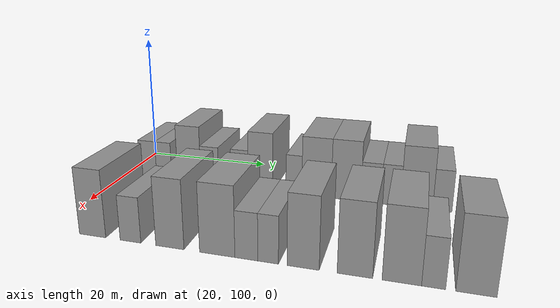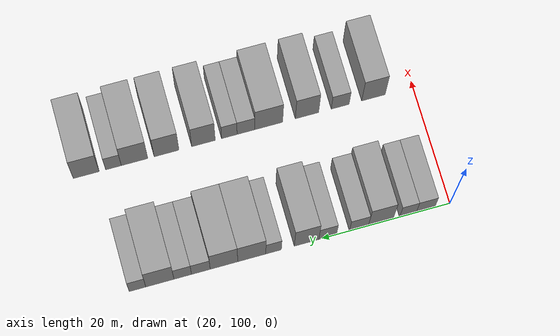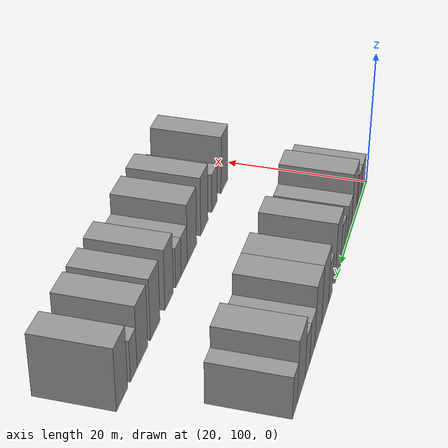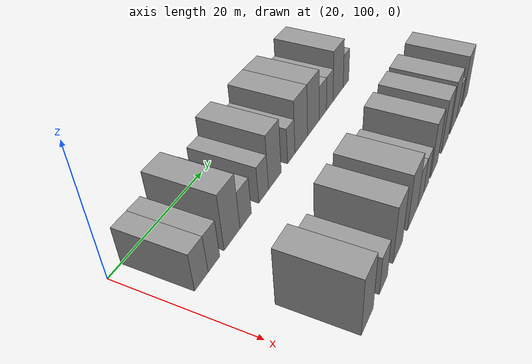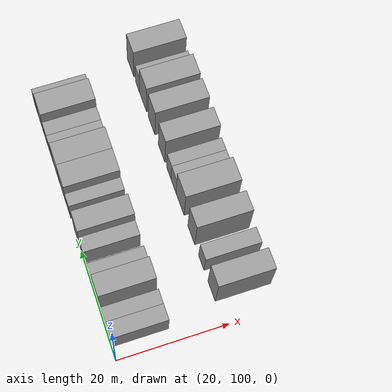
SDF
<sdf version="1.6">
 <world name="default">
  <model name="building_72">
   <static>1</static>
   <pose>25.0000 103.8931 0 0.000000 0.000000 0.000000</pose>
   <link name="link">
    <pose>0 0 3.00 0 0 0</pose>
    <collision name="collision"><geometry><box><size>10.0000 2.8968 6.0000</size></box></geometry></collision>
    <visual name="visual">
     <cast_shadows>0</cast_shadows>
     <geometry><box><size>10.0000 2.8968 6.0000</size></box></geometry>
     <material>
      <script>
       <uri>model://grey_wall/materials/scripts</uri>
       <uri>model://grey_wall/materials/textures</uri>
       <name>vrc/grey_wall</name>
      </script>
     </material>
    </visual>
   </link>
  </model>
  <model name="building_73">
   <static>1</static>
   <pose>25.0000 106.6384 0 0.000000 0.000000 0.000000</pose>
   <link name="link">
    <pose>0 0 3.00 0 0 0</pose>
    <collision name="collision"><geometry><box><size>10.0000 2.5937 6.0000</size></box></geometry></collision>
    <visual name="visual">
     <cast_shadows>0</cast_shadows>
     <geometry><box><size>10.0000 2.5937 6.0000</size></box></geometry>
     <material>
      <script>
       <uri>model://grey_wall/materials/scripts</uri>
       <uri>model://grey_wall/materials/textures</uri>
       <name>vrc/grey_wall</name>
      </script>
     </material>
    </visual>
   </link>
  </model>
  <model name="building_74">
   <static>1</static>
   <pose>25.0000 110.8752 0 0.000000 0.000000 0.000000</pose>
   <link name="link">
    <pose>0 0 4.50 0 0 0</pose>
    <collision name="collision"><geometry><box><size>10.0000 3.8799 9.0000</size></box></geometry></collision>
    <visual name="visual">
     <cast_shadows>0</cast_shadows>
     <geometry><box><size>10.0000 3.8799 9.0000</size></box></geometry>
     <material>
      <script>
       <uri>model://grey_wall/materials/scripts</uri>
       <uri>model://grey_wall/materials/textures</uri>
       <name>vrc/grey_wall</name>
      </script>
     </material>
    </visual>
   </link>
  </model>
  <model name="building_75">
   <static>1</static>
   <pose>25.0000 114.2892 0 0.000000 0.000000 0.000000</pose>
   <link name="link">
    <pose>0 0 3.00 0 0 0</pose>
    <collision name="collision"><geometry><box><size>10.0000 2.9481 6.0000</size></box></geometry></collision>
    <visual name="visual">
     <cast_shadows>0</cast_shadows>
     <geometry><box><size>10.0000 2.9481 6.0000</size></box></geometry>
     <material>
      <script>
       <uri>model://grey_wall/materials/scripts</uri>
       <uri>model://grey_wall/materials/textures</uri>
       <name>vrc/grey_wall</name>
      </script>
     </material>
    </visual>
   </link>
  </model>
  <model name="building_76">
   <static>1</static>
   <pose>25.0000 119.1432 0 0.000000 0.000000 0.000000</pose>
   <link name="link">
    <pose>0 0 3.00 0 0 0</pose>
    <collision name="collision"><geometry><box><size>10.0000 2.7599 6.0000</size></box></geometry></collision>
    <visual name="visual">
     <cast_shadows>0</cast_shadows>
     <geometry><box><size>10.0000 2.7599 6.0000</size></box></geometry>
     <material>
      <script>
       <uri>model://grey_wall/materials/scripts</uri>
       <uri>model://grey_wall/materials/textures</uri>
       <name>vrc/grey_wall</name>
      </script>
     </material>
    </visual>
   </link>
  </model>
  <model name="building_77">
   <static>1</static>
   <pose>25.0000 122.4246 0 0.000000 0.000000 0.000000</pose>
   <link name="link">
    <pose>0 0 4.50 0 0 0</pose>
    <collision name="collision"><geometry><box><size>10.0000 3.8030 9.0000</size></box></geometry></collision>
    <visual name="visual">
     <cast_shadows>0</cast_shadows>
     <geometry><box><size>10.0000 3.8030 9.0000</size></box></geometry>
     <material>
      <script>
       <uri>model://grey_wall/materials/scripts</uri>
       <uri>model://grey_wall/materials/textures</uri>
       <name>vrc/grey_wall</name>
      </script>
     </material>
    </visual>
   </link>
  </model>
  <model name="building_78">
   <static>1</static>
   <pose>25.0000 127.5338 0 0.000000 0.000000 0.000000</pose>
   <link name="link">
    <pose>0 0 3.00 0 0 0</pose>
    <collision name="collision"><geometry><box><size>10.0000 2.4152 6.0000</size></box></geometry></collision>
    <visual name="visual">
     <cast_shadows>0</cast_shadows>
     <geometry><box><size>10.0000 2.4152 6.0000</size></box></geometry>
     <material>
      <script>
       <uri>model://grey_wall/materials/scripts</uri>
       <uri>model://grey_wall/materials/textures</uri>
       <name>vrc/grey_wall</name>
      </script>
     </material>
    </visual>
   </link>
  </model>
  <model name="building_79">
   <static>1</static>
   <pose>25.0000 130.9067 0 0.000000 0.000000 0.000000</pose>
   <link name="link">
    <pose>0 0 4.50 0 0 0</pose>
    <collision name="collision"><geometry><box><size>10.0000 4.3306 9.0000</size></box></geometry></collision>
    <visual name="visual">
     <cast_shadows>0</cast_shadows>
     <geometry><box><size>10.0000 4.3306 9.0000</size></box></geometry>
     <material>
      <script>
       <uri>model://grey_wall/materials/scripts</uri>
       <uri>model://grey_wall/materials/textures</uri>
       <name>vrc/grey_wall</name>
      </script>
     </material>
    </visual>
   </link>
  </model>
  <model name="building_80">
   <static>1</static>
   <pose>25.0000 135.1905 0 0.000000 0.000000 0.000000</pose>
   <link name="link">
    <pose>0 0 4.50 0 0 0</pose>
    <collision name="collision"><geometry><box><size>10.0000 4.2369 9.0000</size></box></geometry></collision>
    <visual name="visual">
     <cast_shadows>0</cast_shadows>
     <geometry><box><size>10.0000 4.2369 9.0000</size></box></geometry>
     <material>
      <script>
       <uri>model://grey_wall/materials/scripts</uri>
       <uri>model://grey_wall/materials/textures</uri>
       <name>vrc/grey_wall</name>
      </script>
     </material>
    </visual>
   </link>
  </model>
  <model name="building_81">
   <static>1</static>
   <pose>25.0000 138.7444 0 0.000000 0.000000 0.000000</pose>
   <link name="link">
    <pose>0 0 3.00 0 0 0</pose>
    <collision name="collision"><geometry><box><size>10.0000 2.8708 6.0000</size></box></geometry></collision>
    <visual name="visual">
     <cast_shadows>0</cast_shadows>
     <geometry><box><size>10.0000 2.8708 6.0000</size></box></geometry>
     <material>
      <script>
       <uri>model://grey_wall/materials/scripts</uri>
       <uri>model://grey_wall/materials/textures</uri>
       <name>vrc/grey_wall</name>
      </script>
     </material>
    </visual>
   </link>
  </model>
  <model name="building_82">
   <static>1</static>
   <pose>25.0000 141.5231 0 0.000000 0.000000 0.000000</pose>
   <link name="link">
    <pose>0 0 3.00 0 0 0</pose>
    <collision name="collision"><geometry><box><size>10.0000 2.6867 6.0000</size></box></geometry></collision>
    <visual name="visual">
     <cast_shadows>0</cast_shadows>
     <geometry><box><size>10.0000 2.6867 6.0000</size></box></geometry>
     <material>
      <script>
       <uri>model://grey_wall/materials/scripts</uri>
       <uri>model://grey_wall/materials/textures</uri>
       <name>vrc/grey_wall</name>
      </script>
     </material>
    </visual>
   </link>
  </model>
  <model name="building_83">
   <static>1</static>
   <pose>25.0000 145.0186 0 0.000000 0.000000 0.000000</pose>
   <link name="link">
    <pose>0 0 4.50 0 0 0</pose>
    <collision name="collision"><geometry><box><size>10.0000 4.3043 9.0000</size></box></geometry></collision>
    <visual name="visual">
     <cast_shadows>0</cast_shadows>
     <geometry><box><size>10.0000 4.3043 9.0000</size></box></geometry>
     <material>
      <script>
       <uri>model://grey_wall/materials/scripts</uri>
       <uri>model://grey_wall/materials/textures</uri>
       <name>vrc/grey_wall</name>
      </script>
     </material>
    </visual>
   </link>
  </model>
  <model name="building_84">
   <static>1</static>
   <pose>25.0000 148.4384 0 0.000000 0.000000 0.000000</pose>
   <link name="link">
    <pose>0 0 3.00 0 0 0</pose>
    <collision name="collision"><geometry><box><size>10.0000 2.5353 6.0000</size></box></geometry></collision>
    <visual name="visual">
     <cast_shadows>0</cast_shadows>
     <geometry><box><size>10.0000 2.5353 6.0000</size></box></geometry>
     <material>
      <script>
       <uri>model://grey_wall/materials/scripts</uri>
       <uri>model://grey_wall/materials/textures</uri>
       <name>vrc/grey_wall</name>
      </script>
     </material>
    </visual>
   </link>
  </model>
  <model name="building_174">
   <static>1</static>
   <pose>44.0000 106.3006 0 0.000000 0.000000 0.000000</pose>
   <link name="link">
    <pose>0 0 4.50 0 0 0</pose>
    <collision name="collision"><geometry><box><size>10.0000 3.7335 9.0000</size></box></geometry></collision>
    <visual name="visual">
     <cast_shadows>0</cast_shadows>
     <geometry><box><size>10.0000 3.7335 9.0000</size></box></geometry>
     <material>
      <script>
       <uri>model://grey_wall/materials/scripts</uri>
       <uri>model://grey_wall/materials/textures</uri>
       <name>vrc/grey_wall</name>
      </script>
     </material>
    </visual>
   </link>
  </model>
  <model name="building_175">
   <static>1</static>
   <pose>44.0000 111.5860 0 0.000000 0.000000 0.000000</pose>
   <link name="link">
    <pose>0 0 3.00 0 0 0</pose>
    <collision name="collision"><geometry><box><size>10.0000 2.8373 6.0000</size></box></geometry></collision>
    <visual name="visual">
     <cast_shadows>0</cast_shadows>
     <geometry><box><size>10.0000 2.8373 6.0000</size></box></geometry>
     <material>
      <script>
       <uri>model://grey_wall/materials/scripts</uri>
       <uri>model://grey_wall/materials/textures</uri>
       <name>vrc/grey_wall</name>
      </script>
     </material>
    </visual>
   </link>
  </model>
  <model name="building_176">
   <static>1</static>
   <pose>44.0000 116.8534 0 0.000000 0.000000 0.000000</pose>
   <link name="link">
    <pose>0 0 4.50 0 0 0</pose>
    <collision name="collision"><geometry><box><size>10.0000 3.6976 9.0000</size></box></geometry></collision>
    <visual name="visual">
     <cast_shadows>0</cast_shadows>
     <geometry><box><size>10.0000 3.6976 9.0000</size></box></geometry>
     <material>
      <script>
       <uri>model://grey_wall/materials/scripts</uri>
       <uri>model://grey_wall/materials/textures</uri>
       <name>vrc/grey_wall</name>
      </script>
     </material>
    </visual>
   </link>
  </model>
  <model name="building_177">
   <static>1</static>
   <pose>44.0000 122.9066 0 0.000000 0.000000 0.000000</pose>
   <link name="link">
    <pose>0 0 4.50 0 0 0</pose>
    <collision name="collision"><geometry><box><size>10.0000 4.4088 9.0000</size></box></geometry></collision>
    <visual name="visual">
     <cast_shadows>0</cast_shadows>
     <geometry><box><size>10.0000 4.4088 9.0000</size></box></geometry>
     <material>
      <script>
       <uri>model://grey_wall/materials/scripts</uri>
       <uri>model://grey_wall/materials/textures</uri>
       <name>vrc/grey_wall</name>
      </script>
     </material>
    </visual>
   </link>
  </model>
  <model name="building_178">
   <static>1</static>
   <pose>44.0000 126.5009 0 0.000000 0.000000 0.000000</pose>
   <link name="link">
    <pose>0 0 3.00 0 0 0</pose>
    <collision name="collision"><geometry><box><size>10.0000 2.7798 6.0000</size></box></geometry></collision>
    <visual name="visual">
     <cast_shadows>0</cast_shadows>
     <geometry><box><size>10.0000 2.7798 6.0000</size></box></geometry>
     <material>
      <script>
       <uri>model://grey_wall/materials/scripts</uri>
       <uri>model://grey_wall/materials/textures</uri>
       <name>vrc/grey_wall</name>
      </script>
     </material>
    </visual>
   </link>
  </model>
  <model name="building_179">
   <static>1</static>
   <pose>44.0000 129.1104 0 0.000000 0.000000 0.000000</pose>
   <link name="link">
    <pose>0 0 3.00 0 0 0</pose>
    <collision name="collision"><geometry><box><size>10.0000 2.4392 6.0000</size></box></geometry></collision>
    <visual name="visual">
     <cast_shadows>0</cast_shadows>
     <geometry><box><size>10.0000 2.4392 6.0000</size></box></geometry>
     <material>
      <script>
       <uri>model://grey_wall/materials/scripts</uri>
       <uri>model://grey_wall/materials/textures</uri>
       <name>vrc/grey_wall</name>
      </script>
     </material>
    </visual>
   </link>
  </model>
  <model name="building_180">
   <static>1</static>
   <pose>44.0000 133.1741 0 0.000000 0.000000 0.000000</pose>
   <link name="link">
    <pose>0 0 4.50 0 0 0</pose>
    <collision name="collision"><geometry><box><size>10.0000 3.6881 9.0000</size></box></geometry></collision>
    <visual name="visual">
     <cast_shadows>0</cast_shadows>
     <geometry><box><size>10.0000 3.6881 9.0000</size></box></geometry>
     <material>
      <script>
       <uri>model://grey_wall/materials/scripts</uri>
       <uri>model://grey_wall/materials/textures</uri>
       <name>vrc/grey_wall</name>
      </script>
     </material>
    </visual>
   </link>
  </model>
  <model name="building_181">
   <static>1</static>
   <pose>44.0000 138.9547 0 0.000000 0.000000 0.000000</pose>
   <link name="link">
    <pose>0 0 4.50 0 0 0</pose>
    <collision name="collision"><geometry><box><size>10.0000 3.8731 9.0000</size></box></geometry></collision>
    <visual name="visual">
     <cast_shadows>0</cast_shadows>
     <geometry><box><size>10.0000 3.8731 9.0000</size></box></geometry>
     <material>
      <script>
       <uri>model://grey_wall/materials/scripts</uri>
       <uri>model://grey_wall/materials/textures</uri>
       <name>vrc/grey_wall</name>
      </script>
     </material>
    </visual>
   </link>
  </model>
  <model name="building_182">
   <static>1</static>
   <pose>44.0000 143.9511 0 0.000000 0.000000 0.000000</pose>
   <link name="link">
    <pose>0 0 4.50 0 0 0</pose>
    <collision name="collision"><geometry><box><size>10.0000 4.1199 9.0000</size></box></geometry></collision>
    <visual name="visual">
     <cast_shadows>0</cast_shadows>
     <geometry><box><size>10.0000 4.1199 9.0000</size></box></geometry>
     <material>
      <script>
       <uri>model://grey_wall/materials/scripts</uri>
       <uri>model://grey_wall/materials/textures</uri>
       <name>vrc/grey_wall</name>
      </script>
     </material>
    </visual>
   </link>
  </model>
  <model name="building_183">
   <static>1</static>
   <pose>44.0000 147.2331 0 0.000000 0.000000 0.000000</pose>
   <link name="link">
    <pose>0 0 3.00 0 0 0</pose>
    <collision name="collision"><geometry><box><size>10.0000 2.4441 6.0000</size></box></geometry></collision>
    <visual name="visual">
     <cast_shadows>0</cast_shadows>
     <geometry><box><size>10.0000 2.4441 6.0000</size></box></geometry>
     <material>
      <script>
       <uri>model://grey_wall/materials/scripts</uri>
       <uri>model://grey_wall/materials/textures</uri>
       <name>vrc/grey_wall</name>
      </script>
     </material>
    </visual>
   </link>
  </model>
  <model name="building_184">
   <static>1</static>
   <pose>44.0000 151.4688 0 0.000000 0.000000 0.000000</pose>
   <link name="link">
    <pose>0 0 4.50 0 0 0</pose>
    <collision name="collision"><geometry><box><size>10.0000 4.0272 9.0000</size></box></geometry></collision>
    <visual name="visual">
     <cast_shadows>0</cast_shadows>
     <geometry><box><size>10.0000 4.0272 9.0000</size></box></geometry>
     <material>
      <script>
       <uri>model://grey_wall/materials/scripts</uri>
       <uri>model://grey_wall/materials/textures</uri>
       <name>vrc/grey_wall</name>
      </script>
     </material>
    </visual>
   </link>
  </model>
 </world>
</sdf>
